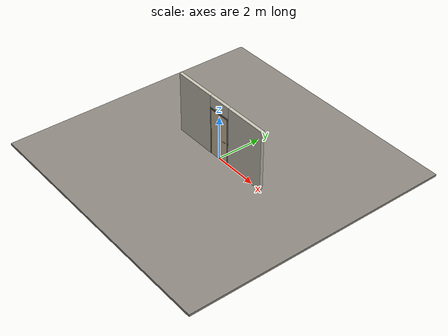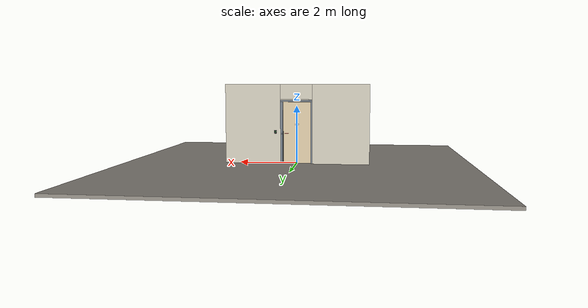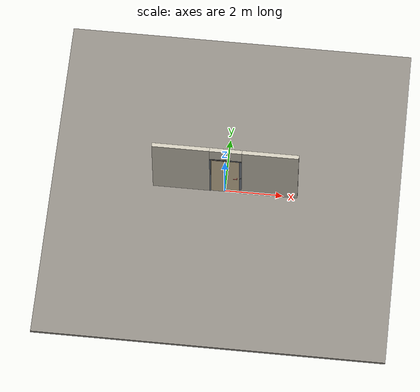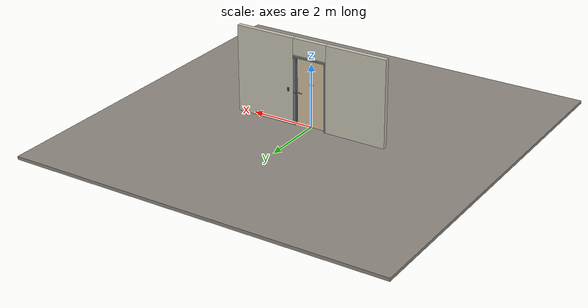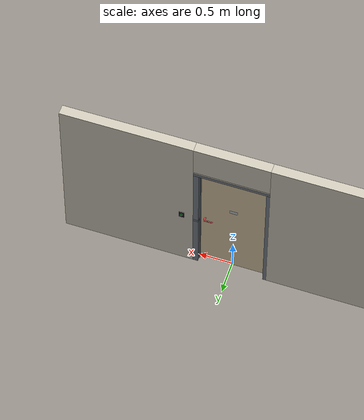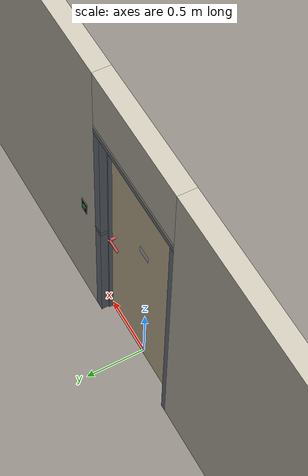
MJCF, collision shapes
<?xml version="1.0" ?>
<mujoco model="db0711_swing_single_full">
  <compiler angle="radian" meshdir="../../hardware" texturedir="../../textures" autolimits="true" inertiafromgeom="false"/>
  <option timestep="0.002" integrator="implicitfast" cone="elliptic" impratio="10" noslip_iterations="3">
    <flag multiccd="enable"/>
  </option>
  <size memory="16M"/>
  <default>
    <geom condim="4" solref="0.005 1" solimp="0.95 0.99 0.001"/>
    <joint solreflimit="0.005 1" solimplimit="0.95 0.99 0.001"/>
    <tendon solreflimit="0.005 1"/>
    <equality solref="0.002 1"/>
  </default>
  <visual>
    <headlight ambient="0.4 0.4 0.4" diffuse="0.7 0.7 0.7" specular="0.2 0.2 0.2"/>
    <quality shadowsize="4096"/>
    <map znear="0.01" zfar="60"/>
  </visual>
  <asset>
    <mesh name="hinge_e22b26c0c1" file="hinge_e22b26c0c1.obj"/>
    <mesh name="hinge_jamb_e1d088f8dc" file="hinge_jamb_e1d088f8dc.obj"/>
    <mesh name="lever_9f02b544cf" file="lever_9f02b544cf.obj"/>
    <material name="mat_floor" rgba="0.55 0.53 0.5 1" specular="0.2" shininess="0.15" reflectance="0"/>
    <material name="mat_wall" rgba="0.78 0.76 0.7 1" specular="0.2" shininess="0.1" reflectance="0"/>
    <material name="mat_leaf" rgba="0.82 0.75 0.62 1" specular="0.23" shininess="0.46" reflectance="0.02"/>
    <material name="mat_hinge" rgba="0.65 0.66 0.68 1" specular="0.74" shininess="0.5" reflectance="0.36"/>
    <material name="mat_op_nickel_satin" rgba="0.72 0.7 0.66 1" specular="0.8" shininess="0.65" reflectance="0.4"/>
    <material name="mat_trim" rgba="0.85 0.66 0.3 1" specular="0.8" shininess="0.75" reflectance="0.4"/>
    <material name="mat_keyway" rgba="0.05 0.05 0.05 1" specular="0.2" shininess="0.5" reflectance="0"/>
    <material name="mat_bolt" rgba="0.75 0.76 0.77 1" specular="0.8" shininess="0.65" reflectance="0.4"/>
    <material name="mat_frame" rgba="0.45 0.48 0.52 1" specular="0.32" shininess="0.6" reflectance="0.08"/>
    <material name="mat_closer" rgba="0.22 0.17 0.13 1" specular="0.8" shininess="0.6" reflectance="0.4"/>
    <material name="mat_sign" rgba="0.75 0.76 0.77 1" specular="0.8" shininess="0.65" reflectance="0.4"/>
    <material name="mat_wallreader" rgba="0.05 0.05 0.05 1" specular="0.38" shininess="0.3" reflectance="0.12"/>
    <material name="mat_rex" rgba="0.1 0.6 0.2 1" specular="0.2" shininess="0.6" reflectance="0"/>
    <texture name="skybox" type="skybox" builtin="gradient" rgb1="0.6 0.7 0.85" rgb2="0.9 0.92 0.95" width="256" height="256"/>
  </asset>
  <worldbody>
    <light name="sun" pos="1.5 -2.5 4" dir="-0.3 0.5 -0.8" directional="true" diffuse="0.8 0.8 0.8" specular="0.3 0.3 0.3" castshadow="true"/>
    <light name="fill" pos="-1.5 2.5 3" dir="0.3 -0.5 -0.7" directional="true" diffuse="0.35 0.35 0.4" castshadow="false"/>
    <camera name="robot_view" pos="0 -2.594313 1.812087" xyaxes="1 0 0 0 0.26963 0.962964" fovy="52"/>
    <camera name="far_view" pos="0 2.681312 1.812087" xyaxes="-1 0 0 0 -0.26963 0.962964" fovy="52"/>
    <camera name="iso" pos="2.004737 -2.172262 2.234138" xyaxes="0.741536 0.670913 0 -0.242917 0.268487 0.932151" fovy="46"/>
    <camera name="detail_handle" pos="0.492 -0.877 1.32" xyaxes="0.97561 0.219512 0 -0.070934 0.315262 0.94635" fovy="38"/>
    <geom name="floor" type="box" size="6 6 0.05" pos="0 0 -0.05" material="mat_floor" group="0" contype="1" conaffinity="1" friction="0.8 0.005 0.0001" density="2400"/>
    <geom name="wall_left" type="box" size="0.982 0.0725 1.3735" pos="-1.518 0.0435 1.3735" material="mat_wall" group="0" contype="1" conaffinity="1" friction="0.6 0.005 0.0001" density="800"/>
    <geom name="wall_right" type="box" size="0.967 0.0725 1.3735" pos="1.533 0.0435 1.3735" material="mat_wall" group="0" contype="1" conaffinity="1" friction="0.6 0.005 0.0001" density="800"/>
    <geom name="wall_header" type="box" size="0.551 0.0725 0.26" pos="0.015 0.0435 2.487" material="mat_wall" group="0" contype="1" conaffinity="1" friction="0.6 0.005 0.0001" density="800"/>
    <geom name="hinge_0_jamb" type="mesh" mesh="hinge_jamb_e1d088f8dc" pos="-0.483 -0.029 0.259" material="mat_hinge" group="1" contype="0" conaffinity="0" density="7850"/>
    <geom name="hinge_1_jamb" type="mesh" mesh="hinge_jamb_e1d088f8dc" pos="-0.483 -0.029 1.076" material="mat_hinge" group="1" contype="0" conaffinity="0" density="7850"/>
    <geom name="hinge_2_jamb" type="mesh" mesh="hinge_jamb_e1d088f8dc" pos="-0.483 -0.029 1.963" material="mat_hinge" group="1" contype="0" conaffinity="0" density="7850"/>
    <geom name="jamb_hinge" type="box" size="0.025 0.0725 1.0735" pos="-0.511 0.0435 1.0735" material="mat_frame" group="0" contype="1" conaffinity="1" friction="0.6 0.005 0.0001" density="300"/>
    <geom name="strike_1040_wall_n" type="box" size="0.04 0.05325 0.018" pos="0.526 0.06275 1.04" material="mat_frame" group="0" contype="1" conaffinity="1" friction="0.6 0.005 0.0001" density="300"/>
    <geom name="strike_1040_wall_p" type="box" size="0.04 0.008 0.018" pos="0.526 -0.0175 1.04" material="mat_frame" group="0" contype="1" conaffinity="1" friction="0.6 0.005 0.0001" density="300"/>
    <geom name="strike_1040_ramp" type="box" size="0.04 0.018028 0.018" pos="0.529282 -0.018312 1.04" quat="0.957092 0 0 0.289784" material="mat_frame" group="0" contype="1" conaffinity="1" friction="0.12 0.005 0.0001" density="300"/>
    <geom name="strike_1040_back" type="box" size="0.0285 0.0095 0.018" pos="0.5375 0 1.04" material="mat_frame" group="0" contype="1" conaffinity="1" friction="0.6 0.005 0.0001" density="300"/>
    <geom name="jamb_strike_0" type="box" size="0.04 0.0725 0.511" pos="0.526 0.0435 0.511" material="mat_frame" group="0" contype="1" conaffinity="1" friction="0.6 0.005 0.0001" density="300"/>
    <geom name="jamb_strike_1" type="box" size="0.04 0.0725 0.5445" pos="0.526 0.0435 1.6025" material="mat_frame" group="0" contype="1" conaffinity="1" friction="0.6 0.005 0.0001" density="300"/>
    <geom name="jamb_head" type="box" size="0.551 0.0725 0.025" pos="0.015 0.0435 2.172" material="mat_frame" group="0" contype="1" conaffinity="1" friction="0.6 0.005 0.0001" density="300"/>
    <geom name="head_stud" type="box" size="0.551 0.0725 0.015" pos="0.015 0.0435 2.212" material="mat_wall" group="0" contype="1" conaffinity="1" friction="0.6 0.005 0.0001" density="500"/>
    <geom name="stop_hinge" type="box" size="0.0055 0.016 1.0735" pos="-0.4805 0.0385 1.0735" material="mat_frame" group="0" contype="1" conaffinity="1" friction="0.6 0.005 0.0001" density="300"/>
    <geom name="stop_strike" type="box" size="0.0055 0.016 1.0735" pos="0.4805 0.0385 1.0735" material="mat_frame" group="0" contype="1" conaffinity="1" friction="0.6 0.005 0.0001" density="300"/>
    <geom name="stop_head" type="box" size="0.486 0.016 0.0055" pos="0 0.0385 2.1415" material="mat_frame" group="0" contype="1" conaffinity="1" friction="0.6 0.005 0.0001" density="300"/>
    <geom name="closer_concealed_slot" type="box" size="0.25 0.008 0.004" pos="-0.186 -0.032 2.152" material="mat_closer" group="1" contype="0" conaffinity="0" density="2700"/>
    <geom name="rex_plate" type="box" size="0.04 0.003 0.06" pos="0.736 0.119 1.1" material="mat_wallreader" group="1" contype="0" conaffinity="0" density="1000"/>
    <site name="approach_point" pos="0 -1.5 0" quat="1 0 0 0" size="0.05" rgba="0.2 0.9 0.2 0.5" group="4"/>
    <site name="goal_point" pos="0 1.5 0" quat="1 0 0 0" size="0.05" rgba="0.2 0.9 0.2 0.5" group="4"/>
    <site name="door_plane_center" pos="0 0 1.0735" quat="1 0 0 0" size="0.02" rgba="0.2 0.9 0.2 0.5" group="4"/>
    <body name="rex_button" pos="0.736 0.122 1.1">
      <inertial pos="0 0.004 0" mass="0.010053" quat="0 0 0.707107 -0.707107" diaginertia="0.000001059 0.000001059 0.000002011"/>
      <joint name="rex_button_slide" type="slide" axis="0 -1 0" limited="true" range="0 0.004" damping="1" stiffness="1500" springref="-0.004" armature="0.1"/>
      <geom name="rex_button_geom" type="cylinder" size="0.02 0.004" pos="0 0.004 0" quat="0.707107 -0.707107 0 0" material="mat_rex" group="0" contype="1" conaffinity="1" friction="0.6 0.005 0.0001" density="1000"/>
    </body>
    <body name="leaf" pos="-0.486 0 0">
      <inertial pos="0.476898 -0.000326 1.078033" mass="40.733065" quat="-0.499682 0.500642 -0.499348 -0.500326" diaginertia="3.265146908 15.467571796 18.718848851"/>
      <joint name="leaf_hinge" type="hinge" axis="0 0 -1" pos="0.003 -0.029 0" limited="true" range="0 1.832596" damping="10.334212" frictionloss="0.504513" stiffness="13.852846" springref="-2.233476" armature="0.02"/>
      <geom name="leaf_slab" type="box" size="0.4825 0.022 1.067" pos="0.4855 0 1.076" material="mat_leaf" group="0" contype="1" conaffinity="1" friction="0.4 0.005 0.0001" density="1"/>
      <geom name="hinge_0" type="mesh" mesh="hinge_e22b26c0c1" pos="0.003 -0.029 0.259" material="mat_hinge" group="1" contype="0" conaffinity="0" density="7850"/>
      <geom name="hinge_1" type="mesh" mesh="hinge_e22b26c0c1" pos="0.003 -0.029 1.076" material="mat_hinge" group="1" contype="0" conaffinity="0" density="7850"/>
      <geom name="hinge_2" type="mesh" mesh="hinge_e22b26c0c1" pos="0.003 -0.029 1.963" material="mat_hinge" group="1" contype="0" conaffinity="0" density="7850"/>
      <geom name="leaf_latch_bolt_faceplate" type="box" size="0.0006 0.014 0.028" pos="0.9674 0 1.04" material="mat_bolt" group="1" contype="0" conaffinity="0" density="8500"/>
      <geom name="sign_push" type="box" size="0.06 0.001 0.03" pos="0.4855 0.023 1.359" material="mat_sign" group="2" contype="0" conaffinity="0" density="7900"/>
      <geom name="sign_pull" type="box" size="0.06 0.001 0.03" pos="0.4855 -0.023 1.359" material="mat_sign" group="2" contype="0" conaffinity="0" density="7900"/>
      <site name="leaf_edge_mid" pos="0.968 0 1.067" quat="1 0 0 0" size="0.02" rgba="0.2 0.9 0.2 0.5" group="4"/>
      <body name="leaf_handle" pos="0.898 0 1.04">
        <inertial pos="-0.027758 -0.000956 0" mass="1.005882" quat="0.71178 0 0 -0.702403" diaginertia="0.001794484 0.003806886 0.005422316"/>
        <joint name="leaf_handle_hinge" type="hinge" axis="0 -1 0" limited="true" range="0 0.05" damping="0.245633" frictionloss="0.048" stiffness="1.2" springref="-0.458333" armature="0.01"/>
        <geom name="leaf_handle_spindle" type="cylinder" size="0.006 0.03" pos="0 0 0" quat="0.707107 -0.707107 0 0" material="mat_op_nickel_satin" group="1" contype="0" conaffinity="0" density="7850"/>
        <geom name="leaf_handle_lever_n" type="mesh" mesh="lever_9f02b544cf" pos="0 -0.022 0" quat="0.707107 0.707107 0 0" material="mat_op_nickel_satin" group="1" contype="0" conaffinity="0" density="3000"/>
        <geom name="leaf_handle_lever_col_n" type="capsule" size="0.0095 0.053" pos="-0.0625 -0.077 0" quat="0.707107 0 -0.707107 0" material="mat_op_nickel_satin" group="3" contype="1" conaffinity="1" rgba="0.8 0.3 0.3 0.25" friction="0.7 0.01 0.0001" density="3000"/>
        <geom name="leaf_handle_hub_col_n" type="cylinder" size="0.012 0.022" pos="0 -0.052 0" quat="0.707107 -0.707107 0 0" material="mat_op_nickel_satin" group="3" contype="1" conaffinity="1" rgba="0.8 0.3 0.3 0.25" friction="0.6 0.005 0.0001" density="3000"/>
        <geom name="leaf_handle_cylinder_n" type="cylinder" size="0.0085 0.006" pos="0 -0.0845 0" quat="0.707107 -0.707107 0 0" material="mat_trim" group="1" contype="0" conaffinity="0" density="7100"/>
        <geom name="leaf_handle_keyway_n" type="box" size="0.0012 0.0008 0.006" pos="0 -0.091 0" material="mat_keyway" group="1" contype="0" conaffinity="0" density="7100"/>
        <geom name="leaf_handle_lever_p" type="mesh" mesh="lever_9f02b544cf" pos="0 0.022 0" quat="-0.707107 0.707107 0 0" material="mat_op_nickel_satin" group="1" contype="0" conaffinity="0" density="3000"/>
        <geom name="leaf_handle_lever_col_p" type="capsule" size="0.0095 0.053" pos="-0.0625 0.077 0" quat="0.707107 0 -0.707107 0" material="mat_op_nickel_satin" group="3" contype="1" conaffinity="1" rgba="0.8 0.3 0.3 0.25" friction="0.7 0.01 0.0001" density="3000"/>
        <geom name="leaf_handle_hub_col_p" type="cylinder" size="0.012 0.022" pos="0 0.052 0" quat="0.707107 -0.707107 0 0" material="mat_op_nickel_satin" group="3" contype="1" conaffinity="1" rgba="0.8 0.3 0.3 0.25" friction="0.6 0.005 0.0001" density="3000"/>
        <geom name="leaf_handle_turn_button_p" type="cylinder" size="0.006 0.005" pos="0 0.0875 0" quat="0.707107 -0.707107 0 0" material="mat_trim" group="1" contype="0" conaffinity="0" density="7100"/>
        <site name="leaf_handle_grip_n" pos="-0.1 -0.077 0" quat="1 0 0 0" size="0.012" rgba="0.2 0.9 0.2 0.5" group="4"/>
        <site name="leaf_handle_grip_p" pos="-0.1 0.077 0" quat="1 0 0 0" size="0.012" rgba="0.2 0.9 0.2 0.5" group="4"/>
      </body>
      <body name="leaf_latch_bolt" pos="0.968 0 1.04">
        <inertial pos="-0.0055 0 0" mass="0.074627" quat="0.92388 -0.382683 0 0" diaginertia="0.000002271 0.000013255 0.000013255"/>
        <joint name="leaf_latch_bolt_slide" type="slide" axis="-1 0 0" limited="true" range="0 0.019" damping="2" frictionloss="0.3" stiffness="550" springref="-0.01" armature="0.1"/>
        <geom name="leaf_latch_bolt_capsule" type="capsule" size="0.008 0.0165" pos="-0.0055 0 0" quat="0.707107 0 0.707107 0" material="mat_bolt" group="0" contype="1" conaffinity="1" friction="0.2 0.005 0.0001" density="8500"/>
      </body>
    </body>
  </worldbody>
  <tendon>
    <fixed name="leaf_latch_bolt_coupling" limited="true" range="0 10">
      <joint joint="leaf_latch_bolt_slide" coef="1"/>
      <joint joint="leaf_handle_hinge" coef="-0.020879"/>
    </fixed>
  </tendon>
  <sensor>
    <jointpos name="leaf_hinge_pos" joint="leaf_hinge"/>
    <jointvel name="leaf_hinge_vel" joint="leaf_hinge"/>
    <jointpos name="leaf_handle_hinge_pos" joint="leaf_handle_hinge"/>
    <jointvel name="leaf_handle_hinge_vel" joint="leaf_handle_hinge"/>
    <jointpos name="leaf_latch_bolt_slide_pos" joint="leaf_latch_bolt_slide"/>
    <jointvel name="leaf_latch_bolt_slide_vel" joint="leaf_latch_bolt_slide"/>
    <jointpos name="rex_button_slide_pos" joint="rex_button_slide"/>
    <jointvel name="rex_button_slide_vel" joint="rex_button_slide"/>
  </sensor>
</mujoco>
